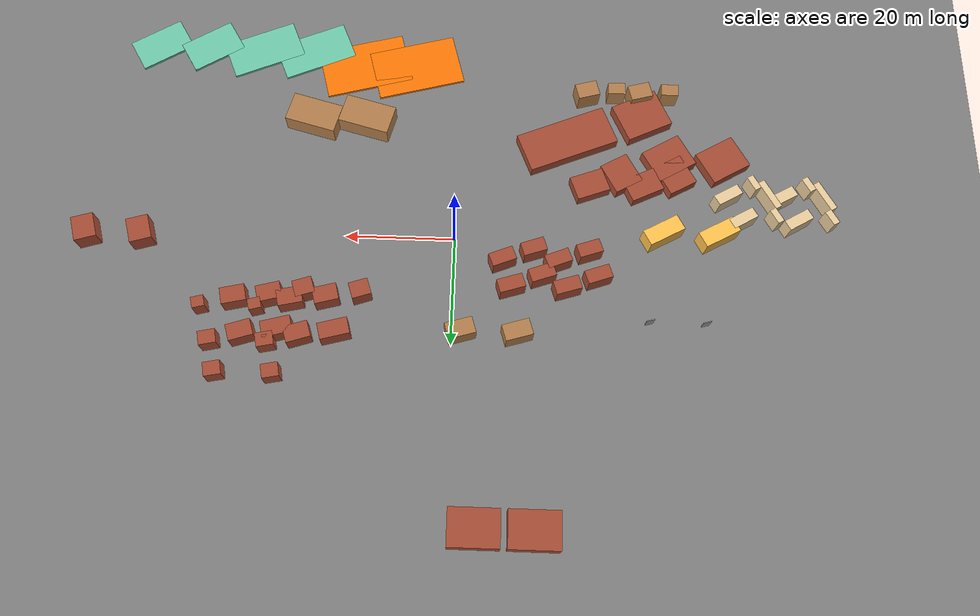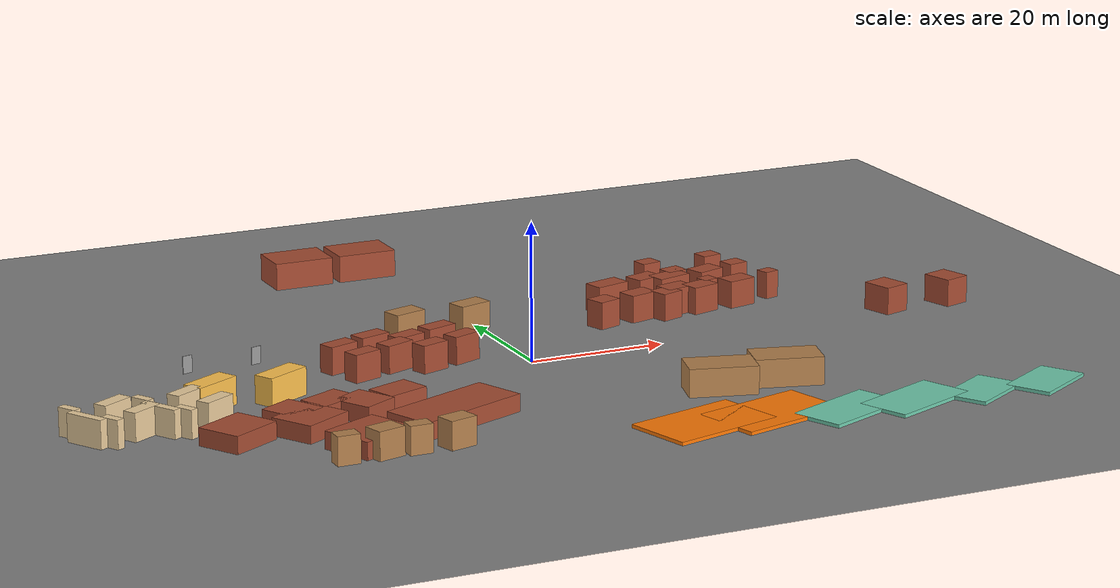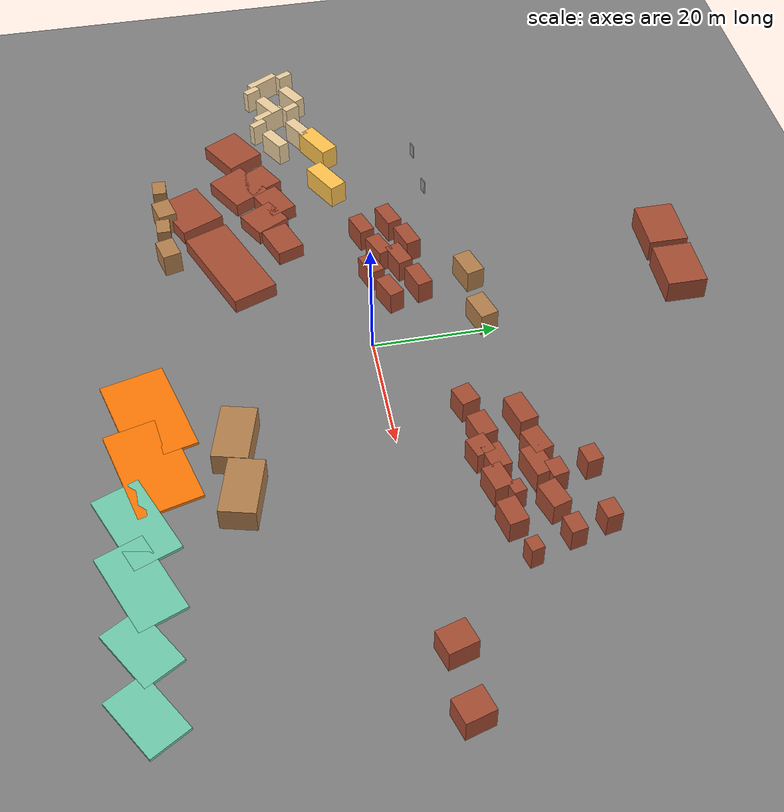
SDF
<sdf version="1.9">
 <world name="runway">
  <spherical_coordinates>
   <surface_model>EARTH_WGS84</surface_model>
   <world_frame_orientation>ENU</world_frame_orientation>
   <latitude_deg>-35.3632620</latitude_deg>
   <longitude_deg>149.1652370</longitude_deg>
   <elevation>584.00</elevation>
   <heading_deg>0.0</heading_deg>
  </spherical_coordinates>
  <physics name="1ms" type="ignored">
   <max_step_size>0.001</max_step_size>
   <real_time_factor>1</real_time_factor>
  </physics>
  <plugin filename="gz-sim-physics-system" name="gz::sim::systems::Physics"/>
  <include><pose degrees="true">-29 545 0 0 0 363</pose><uri>model://runway</uri></include>
  <include><name>v1</name><pose degrees="true">-5 5 0.2 0 0 0</pose><uri>model://v1</uri></include>
  <include><name>v2</name><pose degrees="true">5 5 0.2 0 0 0</pose><uri>model://v2</uri></include>
 </world>
</sdf>
